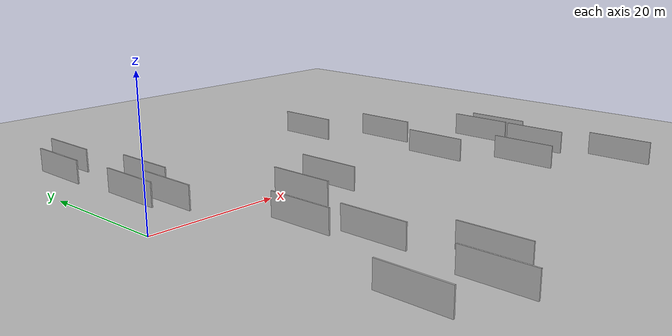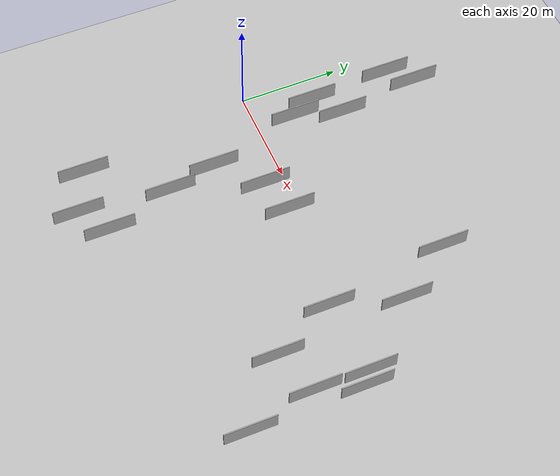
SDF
<?xml version="1.0" encoding="utf-8"?>

<sdf version="1.6">

   <world name="default">

      <gui fullscreen="0">

         <camera name="user_camera">

            <pose>-15 0 4.57585 0 0 0</pose>

            <view_controller>orbit</view_controller>

         </camera>

      </gui>

      <scene>

         <sky>

           <clouds>

             <speed>12</speed>

           </clouds>

         </sky>

         <ambient>0.4 0.4 0.4 1</ambient>

         <background>0.7 0.7 0.7 1</background>

         <shadows>1</shadows>

      </scene>

      <gravity>0 0 -9.8066</gravity>

      <magnetic_field>6e-06 2.3e-05 -4.2e-05</magnetic_field>

      <physics default="0" name="default_physics" type="ode">

         <ode>

            <solver>

               <type>quick</type>

               <iters>10</iters>

               <sor>1.0</sor>

               <use_dynamic_moi_rescaling>0</use_dynamic_moi_rescaling>

            </solver>

            <constraints>

               <cfm>0</cfm>

               <erp>0.2</erp>

               <contact_max_correcting_vel>100</contact_max_correcting_vel>

               <contact_surface_layer>0.001</contact_surface_layer>

            </constraints>

         </ode>

         <max_step_size>0.004</max_step_size>

         <real_time_factor>1</real_time_factor>

         <real_time_update_rate>250</real_time_update_rate>

      </physics>

      <light name="sun" type="directional">

         <cast_shadows>1</cast_shadows>

         <pose>0 0 10 0 0 0</pose>

         <diffuse>0.8 0.8 0.8 1</diffuse>

         <specular>0.2 0.2 0.2 1</specular>

         <attenuation>

            <range>1000</range>

            <constant>0.9</constant>

            <linear>0.01</linear>

            <quadratic>0.001</quadratic>

         </attenuation>

         <direction>-0.5 0.1 -0.9</direction>

      </light>

      <include>

         <name>ground_plane_1</name>

         <uri>model://HANNAS_ground_plane</uri>

         <pose>0 0 0  0 0 0</pose>

      </include>

      <include>

         <name>ground_plane_2</name>

         <uri>model://HANNAS_ground_plane</uri>

         <pose>100 0 0  0 0 0</pose>

      </include>

      <model name="HANNAS_wall_1">

         <static>1</static>

         <pose frame="">47.6963 20.3924 0.0 0.000000 0.000000 1.570796</pose>

         <link name="link">

            <pose frame="">0 0 2.00 0 0 0</pose>

            <collision name="collision">

               <geometry>

                  <box>

                     <size>10.00 0.2 4.00</size>

                  </box>

               </geometry>

               <max_contacts>10</max_contacts>

               <surface>

                  <contact>

                     <ode/>

                  </contact>

                  <bounce/>

                  <friction>

                     <torsional>

                        <ode/>

                     </torsional>

                     <ode/>

                  </friction>

               </surface>

            </collision>

            <visual name="visual">

               <cast_shadows>0</cast_shadows>

               <geometry>

                  <box>

                     <size>10.00 0.2 4.00</size>

                  </box>

               </geometry>

               <material>

                  <script>

                     <uri>model://HANNAS_wall/materials/scripts</uri>

                     <uri>model://HANNAS_wall/materials/textures</uri>

                     <name>vrc/HANNAS_wall</name>

                  </script>

               </material>

            </visual>

            <self_collide>0</self_collide>

            <enable_wind>0</enable_wind>

            <kinematic>0</kinematic>

         </link>

      </model>

      <model name="HANNAS_wall_2">

         <static>1</static>

         <pose frame="">55.3431 9.2671 0.0 0.000000 0.000000 1.570796</pose>

         <link name="link">

            <pose frame="">0 0 2.00 0 0 0</pose>

            <collision name="collision">

               <geometry>

                  <box>

                     <size>10.00 0.2 4.00</size>

                  </box>

               </geometry>

               <max_contacts>10</max_contacts>

               <surface>

                  <contact>

                     <ode/>

                  </contact>

                  <bounce/>

                  <friction>

                     <torsional>

                        <ode/>

                     </torsional>

                     <ode/>

                  </friction>

               </surface>

            </collision>

            <visual name="visual">

               <cast_shadows>0</cast_shadows>

               <geometry>

                  <box>

                     <size>10.00 0.2 4.00</size>

                  </box>

               </geometry>

               <material>

                  <script>

                     <uri>model://HANNAS_wall/materials/scripts</uri>

                     <uri>model://HANNAS_wall/materials/textures</uri>

                     <name>vrc/HANNAS_wall</name>

                  </script>

               </material>

            </visual>

            <self_collide>0</self_collide>

            <enable_wind>0</enable_wind>

            <kinematic>0</kinematic>

         </link>

      </model>

      <model name="HANNAS_wall_3">

         <static>1</static>

         <pose frame="">57.2639 -16.7933 0.0 0.000000 0.000000 1.570796</pose>

         <link name="link">

            <pose frame="">0 0 2.00 0 0 0</pose>

            <collision name="collision">

               <geometry>

                  <box>

                     <size>10.00 0.2 4.00</size>

                  </box>

               </geometry>

               <max_contacts>10</max_contacts>

               <surface>

                  <contact>

                     <ode/>

                  </contact>

                  <bounce/>

                  <friction>

                     <torsional>

                        <ode/>

                     </torsional>

                     <ode/>

                  </friction>

               </surface>

            </collision>

            <visual name="visual">

               <cast_shadows>0</cast_shadows>

               <geometry>

                  <box>

                     <size>10.00 0.2 4.00</size>

                  </box>

               </geometry>

               <material>

                  <script>

                     <uri>model://HANNAS_wall/materials/scripts</uri>

                     <uri>model://HANNAS_wall/materials/textures</uri>

                     <name>vrc/HANNAS_wall</name>

                  </script>

               </material>

            </visual>

            <self_collide>0</self_collide>

            <enable_wind>0</enable_wind>

            <kinematic>0</kinematic>

         </link>

      </model>

      <model name="HANNAS_wall_4">

         <static>1</static>

         <pose frame="">20.4335 -35.1803 0.0 0.000000 0.000000 1.570796</pose>

         <link name="link">

            <pose frame="">0 0 2.00 0 0 0</pose>

            <collision name="collision">

               <geometry>

                  <box>

                     <size>10.00 0.2 4.00</size>

                  </box>

               </geometry>

               <max_contacts>10</max_contacts>

               <surface>

                  <contact>

                     <ode/>

                  </contact>

                  <bounce/>

                  <friction>

                     <torsional>

                        <ode/>

                     </torsional>

                     <ode/>

                  </friction>

               </surface>

            </collision>

            <visual name="visual">

               <cast_shadows>0</cast_shadows>

               <geometry>

                  <box>

                     <size>10.00 0.2 4.00</size>

                  </box>

               </geometry>

               <material>

                  <script>

                     <uri>model://HANNAS_wall/materials/scripts</uri>

                     <uri>model://HANNAS_wall/materials/textures</uri>

                     <name>vrc/HANNAS_wall</name>

                  </script>

               </material>

            </visual>

            <self_collide>0</self_collide>

            <enable_wind>0</enable_wind>

            <kinematic>0</kinematic>

         </link>

      </model>

      <model name="HANNAS_wall_5">

         <static>1</static>

         <pose frame="">51.3692 -4.3155 0.0 0.000000 0.000000 1.570796</pose>

         <link name="link">

            <pose frame="">0 0 2.00 0 0 0</pose>

            <collision name="collision">

               <geometry>

                  <box>

                     <size>10.00 0.2 4.00</size>

                  </box>

               </geometry>

               <max_contacts>10</max_contacts>

               <surface>

                  <contact>

                     <ode/>

                  </contact>

                  <bounce/>

                  <friction>

                     <torsional>

                        <ode/>

                     </torsional>

                     <ode/>

                  </friction>

               </surface>

            </collision>

            <visual name="visual">

               <cast_shadows>0</cast_shadows>

               <geometry>

                  <box>

                     <size>10.00 0.2 4.00</size>

                  </box>

               </geometry>

               <material>

                  <script>

                     <uri>model://HANNAS_wall/materials/scripts</uri>

                     <uri>model://HANNAS_wall/materials/textures</uri>

                     <name>vrc/HANNAS_wall</name>

                  </script>

               </material>

            </visual>

            <self_collide>0</self_collide>

            <enable_wind>0</enable_wind>

            <kinematic>0</kinematic>

         </link>

      </model>

      <model name="HANNAS_wall_6">

         <static>1</static>

         <pose frame="">11.2999 16.6814 0.0 0.000000 0.000000 1.570796</pose>

         <link name="link">

            <pose frame="">0 0 2.00 0 0 0</pose>

            <collision name="collision">

               <geometry>

                  <box>

                     <size>10.00 0.2 4.00</size>

                  </box>

               </geometry>

               <max_contacts>10</max_contacts>

               <surface>

                  <contact>

                     <ode/>

                  </contact>

                  <bounce/>

                  <friction>

                     <torsional>

                        <ode/>

                     </torsional>

                     <ode/>

                  </friction>

               </surface>

            </collision>

            <visual name="visual">

               <cast_shadows>0</cast_shadows>

               <geometry>

                  <box>

                     <size>10.00 0.2 4.00</size>

                  </box>

               </geometry>

               <material>

                  <script>

                     <uri>model://HANNAS_wall/materials/scripts</uri>

                     <uri>model://HANNAS_wall/materials/textures</uri>

                     <name>vrc/HANNAS_wall</name>

                  </script>

               </material>

            </visual>

            <self_collide>0</self_collide>

            <enable_wind>0</enable_wind>

            <kinematic>0</kinematic>

         </link>

      </model>

      <model name="HANNAS_wall_7">

         <static>1</static>

         <pose frame="">68.7887 -4.8662 0.0 0.000000 0.000000 1.570796</pose>

         <link name="link">

            <pose frame="">0 0 2.00 0 0 0</pose>

            <collision name="collision">

               <geometry>

                  <box>

                     <size>10.00 0.2 4.00</size>

                  </box>

               </geometry>

               <max_contacts>10</max_contacts>

               <surface>

                  <contact>

                     <ode/>

                  </contact>

                  <bounce/>

                  <friction>

                     <torsional>

                        <ode/>

                     </torsional>

                     <ode/>

                  </friction>

               </surface>

            </collision>

            <visual name="visual">

               <cast_shadows>0</cast_shadows>

               <geometry>

                  <box>

                     <size>10.00 0.2 4.00</size>

                  </box>

               </geometry>

               <material>

                  <script>

                     <uri>model://HANNAS_wall/materials/scripts</uri>

                     <uri>model://HANNAS_wall/materials/textures</uri>

                     <name>vrc/HANNAS_wall</name>

                  </script>

               </material>

            </visual>

            <self_collide>0</self_collide>

            <enable_wind>0</enable_wind>

            <kinematic>0</kinematic>

         </link>

      </model>

      <model name="HANNAS_wall_8">

         <static>1</static>

         <pose frame="">14.5026 -39.3632 0.0 0.000000 0.000000 1.570796</pose>

         <link name="link">

            <pose frame="">0 0 2.00 0 0 0</pose>

            <collision name="collision">

               <geometry>

                  <box>

                     <size>10.00 0.2 4.00</size>

                  </box>

               </geometry>

               <max_contacts>10</max_contacts>

               <surface>

                  <contact>

                     <ode/>

                  </contact>

                  <bounce/>

                  <friction>

                     <torsional>

                        <ode/>

                     </torsional>

                     <ode/>

                  </friction>

               </surface>

            </collision>

            <visual name="visual">

               <cast_shadows>0</cast_shadows>

               <geometry>

                  <box>

                     <size>10.00 0.2 4.00</size>

                  </box>

               </geometry>

               <material>

                  <script>

                     <uri>model://HANNAS_wall/materials/scripts</uri>

                     <uri>model://HANNAS_wall/materials/textures</uri>

                     <name>vrc/HANNAS_wall</name>

                  </script>

               </material>

            </visual>

            <self_collide>0</self_collide>

            <enable_wind>0</enable_wind>

            <kinematic>0</kinematic>

         </link>

      </model>

      <model name="HANNAS_wall_9">

         <static>1</static>

         <pose frame="">21.5722 -4.2245 0.0 0.000000 0.000000 1.570796</pose>

         <link name="link">

            <pose frame="">0 0 2.00 0 0 0</pose>

            <collision name="collision">

               <geometry>

                  <box>

                     <size>10.00 0.2 4.00</size>

                  </box>

               </geometry>

               <max_contacts>10</max_contacts>

               <surface>

                  <contact>

                     <ode/>

                  </contact>

                  <bounce/>

                  <friction>

                     <torsional>

                        <ode/>

                     </torsional>

                     <ode/>

                  </friction>

               </surface>

            </collision>

            <visual name="visual">

               <cast_shadows>0</cast_shadows>

               <geometry>

                  <box>

                     <size>10.00 0.2 4.00</size>

                  </box>

               </geometry>

               <material>

                  <script>

                     <uri>model://HANNAS_wall/materials/scripts</uri>

                     <uri>model://HANNAS_wall/materials/textures</uri>

                     <name>vrc/HANNAS_wall</name>

                  </script>

               </material>

            </visual>

            <self_collide>0</self_collide>

            <enable_wind>0</enable_wind>

            <kinematic>0</kinematic>

         </link>

      </model>

      <model name="HANNAS_wall_10">

         <static>1</static>

         <pose frame="">5.7013 -35.4349 0.0 0.000000 0.000000 1.570796</pose>

         <link name="link">

            <pose frame="">0 0 2.00 0 0 0</pose>

            <collision name="collision">

               <geometry>

                  <box>

                     <size>10.00 0.2 4.00</size>

                  </box>

               </geometry>

               <max_contacts>10</max_contacts>

               <surface>

                  <contact>

                     <ode/>

                  </contact>

                  <bounce/>

                  <friction>

                     <torsional>

                        <ode/>

                     </torsional>

                     <ode/>

                  </friction>

               </surface>

            </collision>

            <visual name="visual">

               <cast_shadows>0</cast_shadows>

               <geometry>

                  <box>

                     <size>10.00 0.2 4.00</size>

                  </box>

               </geometry>

               <material>

                  <script>

                     <uri>model://HANNAS_wall/materials/scripts</uri>

                     <uri>model://HANNAS_wall/materials/textures</uri>

                     <name>vrc/HANNAS_wall</name>

                  </script>

               </material>

            </visual>

            <self_collide>0</self_collide>

            <enable_wind>0</enable_wind>

            <kinematic>0</kinematic>

         </link>

      </model>

      <model name="HANNAS_wall_11">

         <static>1</static>

         <pose frame="">5.9404 12.4296 0.0 0.000000 0.000000 1.570796</pose>

         <link name="link">

            <pose frame="">0 0 2.00 0 0 0</pose>

            <collision name="collision">

               <geometry>

                  <box>

                     <size>10.00 0.2 4.00</size>

                  </box>

               </geometry>

               <max_contacts>10</max_contacts>

               <surface>

                  <contact>

                     <ode/>

                  </contact>

                  <bounce/>

                  <friction>

                     <torsional>

                        <ode/>

                     </torsional>

                     <ode/>

                  </friction>

               </surface>

            </collision>

            <visual name="visual">

               <cast_shadows>0</cast_shadows>

               <geometry>

                  <box>

                     <size>10.00 0.2 4.00</size>

                  </box>

               </geometry>

               <material>

                  <script>

                     <uri>model://HANNAS_wall/materials/scripts</uri>

                     <uri>model://HANNAS_wall/materials/textures</uri>

                     <name>vrc/HANNAS_wall</name>

                  </script>

               </material>

            </visual>

            <self_collide>0</self_collide>

            <enable_wind>0</enable_wind>

            <kinematic>0</kinematic>

         </link>

      </model>

      <model name="HANNAS_wall_12">

         <static>1</static>

         <pose frame="">5.1068 28.8986 0.0 0.000000 0.000000 1.570796</pose>

         <link name="link">

            <pose frame="">0 0 2.00 0 0 0</pose>

            <collision name="collision">

               <geometry>

                  <box>

                     <size>10.00 0.2 4.00</size>

                  </box>

               </geometry>

               <max_contacts>10</max_contacts>

               <surface>

                  <contact>

                     <ode/>

                  </contact>

                  <bounce/>

                  <friction>

                     <torsional>

                        <ode/>

                     </torsional>

                     <ode/>

                  </friction>

               </surface>

            </collision>

            <visual name="visual">

               <cast_shadows>0</cast_shadows>

               <geometry>

                  <box>

                     <size>10.00 0.2 4.00</size>

                  </box>

               </geometry>

               <material>

                  <script>

                     <uri>model://HANNAS_wall/materials/scripts</uri>

                     <uri>model://HANNAS_wall/materials/textures</uri>

                     <name>vrc/HANNAS_wall</name>

                  </script>

               </material>

            </visual>

            <self_collide>0</self_collide>

            <enable_wind>0</enable_wind>

            <kinematic>0</kinematic>

         </link>

      </model>

      <model name="HANNAS_wall_13">

         <static>1</static>

         <pose frame="">16.1383 -21.5206 0.0 0.000000 0.000000 1.570796</pose>

         <link name="link">

            <pose frame="">0 0 2.00 0 0 0</pose>

            <collision name="collision">

               <geometry>

                  <box>

                     <size>10.00 0.2 4.00</size>

                  </box>

               </geometry>

               <max_contacts>10</max_contacts>

               <surface>

                  <contact>

                     <ode/>

                  </contact>

                  <bounce/>

                  <friction>

                     <torsional>

                        <ode/>

                     </torsional>

                     <ode/>

                  </friction>

               </surface>

            </collision>

            <visual name="visual">

               <cast_shadows>0</cast_shadows>

               <geometry>

                  <box>

                     <size>10.00 0.2 4.00</size>

                  </box>

               </geometry>

               <material>

                  <script>

                     <uri>model://HANNAS_wall/materials/scripts</uri>

                     <uri>model://HANNAS_wall/materials/textures</uri>

                     <name>vrc/HANNAS_wall</name>

                  </script>

               </material>

            </visual>

            <self_collide>0</self_collide>

            <enable_wind>0</enable_wind>

            <kinematic>0</kinematic>

         </link>

      </model>

      <model name="HANNAS_wall_14">

         <static>1</static>

         <pose frame="">9.2758 33.2405 0.0 0.000000 0.000000 1.570796</pose>

         <link name="link">

            <pose frame="">0 0 2.00 0 0 0</pose>

            <collision name="collision">

               <geometry>

                  <box>

                     <size>10.00 0.2 4.00</size>

                  </box>

               </geometry>

               <max_contacts>10</max_contacts>

               <surface>

                  <contact>

                     <ode/>

                  </contact>

                  <bounce/>

                  <friction>

                     <torsional>

                        <ode/>

                     </torsional>

                     <ode/>

                  </friction>

               </surface>

            </collision>

            <visual name="visual">

               <cast_shadows>0</cast_shadows>

               <geometry>

                  <box>

                     <size>10.00 0.2 4.00</size>

                  </box>

               </geometry>

               <material>

                  <script>

                     <uri>model://HANNAS_wall/materials/scripts</uri>

                     <uri>model://HANNAS_wall/materials/textures</uri>

                     <name>vrc/HANNAS_wall</name>

                  </script>

               </material>

            </visual>

            <self_collide>0</self_collide>

            <enable_wind>0</enable_wind>

            <kinematic>0</kinematic>

         </link>

      </model>

      <model name="HANNAS_wall_15">

         <static>1</static>

         <pose frame="">13.9112 -11.7241 0.0 0.000000 0.000000 1.570796</pose>

         <link name="link">

            <pose frame="">0 0 2.00 0 0 0</pose>

            <collision name="collision">

               <geometry>

                  <box>

                     <size>10.00 0.2 4.00</size>

                  </box>

               </geometry>

               <max_contacts>10</max_contacts>

               <surface>

                  <contact>

                     <ode/>

                  </contact>

                  <bounce/>

                  <friction>

                     <torsional>

                        <ode/>

                     </torsional>

                     <ode/>

                  </friction>

               </surface>

            </collision>

            <visual name="visual">

               <cast_shadows>0</cast_shadows>

               <geometry>

                  <box>

                     <size>10.00 0.2 4.00</size>

                  </box>

               </geometry>

               <material>

                  <script>

                     <uri>model://HANNAS_wall/materials/scripts</uri>

                     <uri>model://HANNAS_wall/materials/textures</uri>

                     <name>vrc/HANNAS_wall</name>

                  </script>

               </material>

            </visual>

            <self_collide>0</self_collide>

            <enable_wind>0</enable_wind>

            <kinematic>0</kinematic>

         </link>

      </model>

      <model name="HANNAS_wall_16">

         <static>1</static>

         <pose frame="">8.4554 7.7266 0.0 0.000000 0.000000 1.570796</pose>

         <link name="link">

            <pose frame="">0 0 2.00 0 0 0</pose>

            <collision name="collision">

               <geometry>

                  <box>

                     <size>10.00 0.2 4.00</size>

                  </box>

               </geometry>

               <max_contacts>10</max_contacts>

               <surface>

                  <contact>

                     <ode/>

                  </contact>

                  <bounce/>

                  <friction>

                     <torsional>

                        <ode/>

                     </torsional>

                     <ode/>

                  </friction>

               </surface>

            </collision>

            <visual name="visual">

               <cast_shadows>0</cast_shadows>

               <geometry>

                  <box>

                     <size>10.00 0.2 4.00</size>

                  </box>

               </geometry>

               <material>

                  <script>

                     <uri>model://HANNAS_wall/materials/scripts</uri>

                     <uri>model://HANNAS_wall/materials/textures</uri>

                     <name>vrc/HANNAS_wall</name>

                  </script>

               </material>

            </visual>

            <self_collide>0</self_collide>

            <enable_wind>0</enable_wind>

            <kinematic>0</kinematic>

         </link>

      </model>

      <model name="HANNAS_wall_17">

         <static>1</static>

         <pose frame="">28.8826 -2.3091 0.0 0.000000 0.000000 1.570796</pose>

         <link name="link">

            <pose frame="">0 0 2.00 0 0 0</pose>

            <collision name="collision">

               <geometry>

                  <box>

                     <size>10.00 0.2 4.00</size>

                  </box>

               </geometry>

               <max_contacts>10</max_contacts>

               <surface>

                  <contact>

                     <ode/>

                  </contact>

                  <bounce/>

                  <friction>

                     <torsional>

                        <ode/>

                     </torsional>

                     <ode/>

                  </friction>

               </surface>

            </collision>

            <visual name="visual">

               <cast_shadows>0</cast_shadows>

               <geometry>

                  <box>

                     <size>10.00 0.2 4.00</size>

                  </box>

               </geometry>

               <material>

                  <script>

                     <uri>model://HANNAS_wall/materials/scripts</uri>

                     <uri>model://HANNAS_wall/materials/textures</uri>

                     <name>vrc/HANNAS_wall</name>

                  </script>

               </material>

            </visual>

            <self_collide>0</self_collide>

            <enable_wind>0</enable_wind>

            <kinematic>0</kinematic>

         </link>

      </model>

      <model name="HANNAS_wall_18">

         <static>1</static>

         <pose frame="">69.1086 -26.8999 0.0 0.000000 0.000000 1.570796</pose>

         <link name="link">

            <pose frame="">0 0 2.00 0 0 0</pose>

            <collision name="collision">

               <geometry>

                  <box>

                     <size>10.00 0.2 4.00</size>

                  </box>

               </geometry>

               <max_contacts>10</max_contacts>

               <surface>

                  <contact>

                     <ode/>

                  </contact>

                  <bounce/>

                  <friction>

                     <torsional>

                        <ode/>

                     </torsional>

                     <ode/>

                  </friction>

               </surface>

            </collision>

            <visual name="visual">

               <cast_shadows>0</cast_shadows>

               <geometry>

                  <box>

                     <size>10.00 0.2 4.00</size>

                  </box>

               </geometry>

               <material>

                  <script>

                     <uri>model://HANNAS_wall/materials/scripts</uri>

                     <uri>model://HANNAS_wall/materials/textures</uri>

                     <name>vrc/HANNAS_wall</name>

                  </script>

               </material>

            </visual>

            <self_collide>0</self_collide>

            <enable_wind>0</enable_wind>

            <kinematic>0</kinematic>

         </link>

      </model>

      <model name="HANNAS_wall_19">

         <static>1</static>

         <pose frame="">66.2980 -3.0359 0.0 0.000000 0.000000 1.570796</pose>

         <link name="link">

            <pose frame="">0 0 2.00 0 0 0</pose>

            <collision name="collision">

               <geometry>

                  <box>

                     <size>10.00 0.2 4.00</size>

                  </box>

               </geometry>

               <max_contacts>10</max_contacts>

               <surface>

                  <contact>

                     <ode/>

                  </contact>

                  <bounce/>

                  <friction>

                     <torsional>

                        <ode/>

                     </torsional>

                     <ode/>

                  </friction>

               </surface>

            </collision>

            <visual name="visual">

               <cast_shadows>0</cast_shadows>

               <geometry>

                  <box>

                     <size>10.00 0.2 4.00</size>

                  </box>

               </geometry>

               <material>

                  <script>

                     <uri>model://HANNAS_wall/materials/scripts</uri>

                     <uri>model://HANNAS_wall/materials/textures</uri>

                     <name>vrc/HANNAS_wall</name>

                  </script>

               </material>

            </visual>

            <self_collide>0</self_collide>

            <enable_wind>0</enable_wind>

            <kinematic>0</kinematic>

         </link>

      </model>

      <model name="HANNAS_wall_20">

         <static>1</static>

         <pose frame="">66.1236 -13.5598 0.0 0.000000 0.000000 1.570796</pose>

         <link name="link">

            <pose frame="">0 0 2.00 0 0 0</pose>

            <collision name="collision">

               <geometry>

                  <box>

                     <size>10.00 0.2 4.00</size>

                  </box>

               </geometry>

               <max_contacts>10</max_contacts>

               <surface>

                  <contact>

                     <ode/>

                  </contact>

                  <bounce/>

                  <friction>

                     <torsional>

                        <ode/>

                     </torsional>

                     <ode/>

                  </friction>

               </surface>

            </collision>

            <visual name="visual">

               <cast_shadows>0</cast_shadows>

               <geometry>

                  <box>

                     <size>10.00 0.2 4.00</size>

                  </box>

               </geometry>

               <material>

                  <script>

                     <uri>model://HANNAS_wall/materials/scripts</uri>

                     <uri>model://HANNAS_wall/materials/textures</uri>

                     <name>vrc/HANNAS_wall</name>

                  </script>

               </material>

            </visual>

            <self_collide>0</self_collide>

            <enable_wind>0</enable_wind>

            <kinematic>0</kinematic>

         </link>

      </model>

   </world>

</sdf>

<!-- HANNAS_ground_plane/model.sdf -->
<sdf version="1.4">
<model name="HANNAS_ground_plane">
  <static>true</static>
    <link name="link">
      <collision name="collision">
        <geometry>
          <plane>
            <normal>0 0 1</normal>
            <size>1000 1000</size>
          </plane>
        </geometry>
        <surface>
          <friction>
            <ode>
              <mu>100</mu>
              <mu2>50</mu2>
            </ode>
          </friction>
        </surface>
      </collision>
      <visual name="visual">
        <cast_shadows>false</cast_shadows>
        <geometry>
          <plane>
            <normal>0 0 1</normal>
            <size>1000 1000</size>
          </plane>
        </geometry>
        <material>
          <script>
            <uri>model://HANNAS_ground_plane/materials/scripts/HANNAS_ground_plane.material</uri>
	    <uri>model://HANNAS_ground_plane/materials/textures</uri>
            <name>HANNASGroundPlane/Image</name>
          </script>
        </material>
      </visual>
    </link>
  </model>
</sdf>
